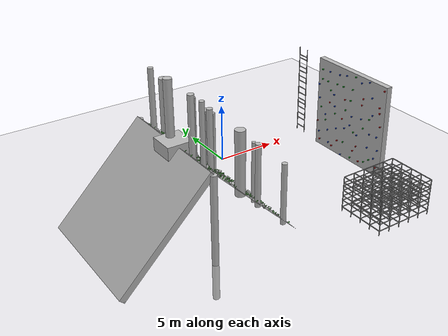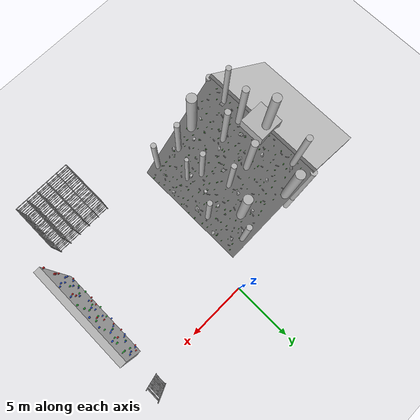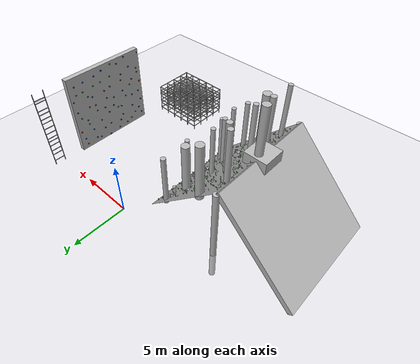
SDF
<sdf version="1.5">
 <world name="mysky">
  <scene>
   <ambient>0.75 0.75 0.75 1</ambient>
   <background>0.5 0.5 0.5 1</background>
   <sky><clouds><speed>10</speed></clouds></sky>
  </scene>
  <include><uri>model://sun</uri></include>
  <include><uri>model://ground_plane</uri></include>
  <light type="point" name="point">
   <pose>-5 5 5 0 0 0</pose>
   <diffuse>1 1 1 1</diffuse>
   <specular>.1 .1 .1 1</specular>
   <attenuation>
    <range>10</range>
    <linear>0.2</linear>
    <constant>0.8</constant>
    <quadratic>0.01</quadratic>
   </attenuation>
   <cast_shadows>false</cast_shadows>
  </light>
  <light type="spot" name="spot">
   <pose>5 5 25 0 0 0</pose>
   <diffuse>1 1 1 1</diffuse>
   <specular>.2 .2 .2 1</specular>
   <attenuation>
    <range>30</range>
    <linear>0.01</linear>
    <constant>0.2</constant>
    <quadratic>0.0</quadratic>
   </attenuation>
   <direction>0 0 -1</direction>
   <spot><inner_angle>0.1</inner_angle><outer_angle>0.5</outer_angle><falloff>1.2</falloff></spot>
   <cast_shadows>false</cast_shadows>
  </light>
  <include><uri>model://woodbox</uri><pose>-8.5 -7 6.5 0 0 0 0</pose></include>
  <include><uri>model://slope</uri><pose>-12 -7 -3.5 0 0.7854 0</pose></include>
  <include><uri>model://ladder</uri><pose>9 0 0 0 0 1.5708</pose></include>
  <include><uri>model://bldwall</uri><pose>9 -10 0 0 0 1.5708</pose></include>
  <include><uri>model://jgym</uri><pose>3 -16 0 0 0 0</pose></include>
 </world>
</sdf>

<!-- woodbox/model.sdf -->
<sdf version="1.5">
  <model name="woodbox">
    <static>true</static>
    <link name="link">

      <collision name="woodboxcollision">
        <pose>0 0 0.5 0 0 0</pose>
        <geometry> <box> <size>2 2 1</size> </box> </geometry>
        <surface>
          <friction> <ode> <mu>0.6</mu> <mu2>0.6</mu2> </ode> </friction>
        </surface>
      </collision>
      <visual name="woodboxvisual">
        <pose>0 0 0.5 0 0 0</pose>
        <geometry> <box> <size>2 2 1</size> </box> </geometry>
        <material>
          <script>
            <uri>file://media/materials/scripts/gazebo.material</uri>
            <name>Gazebo/Soil1</name>
          </script>
        </material>
      </visual>

    </link>
  </model>
</sdf>

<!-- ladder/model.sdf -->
<sdf version="1.5">
  <model name="ladder">
    <static>true</static>
    <link name="link">

<collision name="ladderV1collision">
<pose>0.000000 0.000000 4.000000 0.000000 0.000000 0.000000</pose>
<geometry> <box> <size>0.050000 0.050000 8.000000</size> </box> </geometry>
</collision>
<visual name="ladderV1visual">
<pose>0.000000 0.000000 4.000000 0.000000 0.000000 0.000000</pose>
<geometry> <box> <size>0.050000 0.050000 8.000000</size> </box> </geometry>
<material> <script> <uri>file://media/materials/scripts/gazebo.material</uri>
<name>Gazebo/Grey</name> </script> </material>
</visual>

<collision name="ladderV2collision">
<pose>1.000000 0.000000 4.000000 0.000000 0.000000 0.000000</pose>
<geometry> <box> <size>0.050000 0.050000 8.000000</size> </box> </geometry>
</collision>
<visual name="ladderV2visual">
<pose>1.000000 0.000000 4.000000 0.000000 0.000000 0.000000</pose>
<geometry> <box> <size>0.050000 0.050000 8.000000</size> </box> </geometry>
<material> <script> <uri>file://media/materials/scripts/gazebo.material</uri>
<name>Gazebo/Grey</name> </script> </material>
</visual>

<collision name="ladderH1collision">
<pose>0.500000 0.000000 0.486533 0.000000 0.000000 0.000000</pose>
<geometry> <box> <size>1.000000 0.050000 0.050000</size> </box> </geometry>
</collision>
<visual name="ladderH1visual">
<pose>0.500000 0.000000 0.486533 0.000000 0.000000 0.000000</pose>
<geometry> <box> <size>1.000000 0.050000 0.050000</size> </box> </geometry>
<material> <script> <uri>file://media/materials/scripts/gazebo.material</uri>
<name>Gazebo/Grey</name> </script> </material>
</visual>

<collision name="ladderH2collision">
<pose>0.500000 0.000000 1.221067 0.000000 0.000000 0.000000</pose>
<geometry> <box> <size>1.000000 0.050000 0.050000</size> </box> </geometry>
</collision>
<visual name="ladderH2visual">
<pose>0.500000 0.000000 1.221067 0.000000 0.000000 0.000000</pose>
<geometry> <box> <size>1.000000 0.050000 0.050000</size> </box> </geometry>
<material> <script> <uri>file://media/materials/scripts/gazebo.material</uri>
<name>Gazebo/Grey</name> </script> </material>
</visual>

<collision name="ladderH3collision">
<pose>0.500000 0.000000 1.710800 0.000000 0.000000 0.000000</pose>
<geometry> <box> <size>1.000000 0.050000 0.050000</size> </box> </geometry>
</collision>
<visual name="ladderH3visual">
<pose>0.500000 0.000000 1.710800 0.000000 0.000000 0.000000</pose>
<geometry> <box> <size>1.000000 0.050000 0.050000</size> </box> </geometry>
<material> <script> <uri>file://media/materials/scripts/gazebo.material</uri>
<name>Gazebo/Grey</name> </script> </material>
</visual>

<collision name="ladderH4collision">
<pose>0.500000 0.000000 2.299333 0.000000 0.000000 0.000000</pose>
<geometry> <box> <size>1.000000 0.050000 0.050000</size> </box> </geometry>
</collision>
<visual name="ladderH4visual">
<pose>0.500000 0.000000 2.299333 0.000000 0.000000 0.000000</pose>
<geometry> <box> <size>1.000000 0.050000 0.050000</size> </box> </geometry>
<material> <script> <uri>file://media/materials/scripts/gazebo.material</uri>
<name>Gazebo/Grey</name> </script> </material>
</visual>

<collision name="ladderH5collision">
<pose>0.500000 0.000000 2.783867 0.000000 0.000000 0.000000</pose>
<geometry> <box> <size>1.000000 0.050000 0.050000</size> </box> </geometry>
</collision>
<visual name="ladderH5visual">
<pose>0.500000 0.000000 2.783867 0.000000 0.000000 0.000000</pose>
<geometry> <box> <size>1.000000 0.050000 0.050000</size> </box> </geometry>
<material> <script> <uri>file://media/materials/scripts/gazebo.material</uri>
<name>Gazebo/Grey</name> </script> </material>
</visual>

<collision name="ladderH6collision">
<pose>0.500000 0.000000 3.134000 0.000000 0.000000 0.000000</pose>
<geometry> <box> <size>1.000000 0.050000 0.050000</size> </box> </geometry>
</collision>
<visual name="ladderH6visual">
<pose>0.500000 0.000000 3.134000 0.000000 0.000000 0.000000</pose>
<geometry> <box> <size>1.000000 0.050000 0.050000</size> </box> </geometry>
<material> <script> <uri>file://media/materials/scripts/gazebo.material</uri>
<name>Gazebo/Grey</name> </script> </material>
</visual>

<collision name="ladderH7collision">
<pose>0.500000 0.000000 3.687733 0.000000 0.000000 0.000000</pose>
<geometry> <box> <size>1.000000 0.050000 0.050000</size> </box> </geometry>
</collision>
<visual name="ladderH7visual">
<pose>0.500000 0.000000 3.687733 0.000000 0.000000 0.000000</pose>
<geometry> <box> <size>1.000000 0.050000 0.050000</size> </box> </geometry>
<material> <script> <uri>file://media/materials/scripts/gazebo.material</uri>
<name>Gazebo/Grey</name> </script> </material>
</visual>

<collision name="ladderH8collision">
<pose>0.500000 0.000000 4.263467 0.000000 0.000000 0.000000</pose>
<geometry> <box> <size>1.000000 0.050000 0.050000</size> </box> </geometry>
</collision>
<visual name="ladderH8visual">
<pose>0.500000 0.000000 4.263467 0.000000 0.000000 0.000000</pose>
<geometry> <box> <size>1.000000 0.050000 0.050000</size> </box> </geometry>
<material> <script> <uri>file://media/materials/scripts/gazebo.material</uri>
<name>Gazebo/Grey</name> </script> </material>
</visual>

<collision name="ladderH9collision">
<pose>0.500000 0.000000 4.859600 0.000000 0.000000 0.000000</pose>
<geometry> <box> <size>1.000000 0.050000 0.050000</size> </box> </geometry>
</collision>
<visual name="ladderH9visual">
<pose>0.500000 0.000000 4.859600 0.000000 0.000000 0.000000</pose>
<geometry> <box> <size>1.000000 0.050000 0.050000</size> </box> </geometry>
<material> <script> <uri>file://media/materials/scripts/gazebo.material</uri>
<name>Gazebo/Grey</name> </script> </material>
</visual>

<collision name="ladderH10collision">
<pose>0.500000 0.000000 5.301733 0.000000 0.000000 0.000000</pose>
<geometry> <box> <size>1.000000 0.050000 0.050000</size> </box> </geometry>
</collision>
<visual name="ladderH10visual">
<pose>0.500000 0.000000 5.301733 0.000000 0.000000 0.000000</pose>
<geometry> <box> <size>1.000000 0.050000 0.050000</size> </box> </geometry>
<material> <script> <uri>file://media/materials/scripts/gazebo.material</uri>
<name>Gazebo/Grey</name> </script> </material>
</visual>

<collision name="ladderH11collision">
<pose>0.500000 0.000000 5.811467 0.000000 0.000000 0.000000</pose>
<geometry> <box> <size>1.000000 0.050000 0.050000</size> </box> </geometry>
</collision>
<visual name="ladderH11visual">
<pose>0.500000 0.000000 5.811467 0.000000 0.000000 0.000000</pose>
<geometry> <box> <size>1.000000 0.050000 0.050000</size> </box> </geometry>
<material> <script> <uri>file://media/materials/scripts/gazebo.material</uri>
<name>Gazebo/Grey</name> </script> </material>
</visual>

<collision name="ladderH12collision">
<pose>0.500000 0.000000 6.210800 0.000000 0.000000 0.000000</pose>
<geometry> <box> <size>1.000000 0.050000 0.050000</size> </box> </geometry>
</collision>
<visual name="ladderH12visual">
<pose>0.500000 0.000000 6.210800 0.000000 0.000000 0.000000</pose>
<geometry> <box> <size>1.000000 0.050000 0.050000</size> </box> </geometry>
<material> <script> <uri>file://media/materials/scripts/gazebo.material</uri>
<name>Gazebo/Grey</name> </script> </material>
</visual>

<collision name="ladderH13collision">
<pose>0.500000 0.000000 7.009333 0.000000 0.000000 0.000000</pose>
<geometry> <box> <size>1.000000 0.050000 0.050000</size> </box> </geometry>
</collision>
<visual name="ladderH13visual">
<pose>0.500000 0.000000 7.009333 0.000000 0.000000 0.000000</pose>
<geometry> <box> <size>1.000000 0.050000 0.050000</size> </box> </geometry>
<material> <script> <uri>file://media/materials/scripts/gazebo.material</uri>
<name>Gazebo/Grey</name> </script> </material>
</visual>

<collision name="ladderH14collision">
<pose>0.500000 0.000000 7.290267 0.000000 0.000000 0.000000</pose>
<geometry> <box> <size>1.000000 0.050000 0.050000</size> </box> </geometry>
</collision>
<visual name="ladderH14visual">
<pose>0.500000 0.000000 7.290267 0.000000 0.000000 0.000000</pose>
<geometry> <box> <size>1.000000 0.050000 0.050000</size> </box> </geometry>
<material> <script> <uri>file://media/materials/scripts/gazebo.material</uri>
<name>Gazebo/Grey</name> </script> </material>
</visual>

    </link>
  </model>
</sdf>
